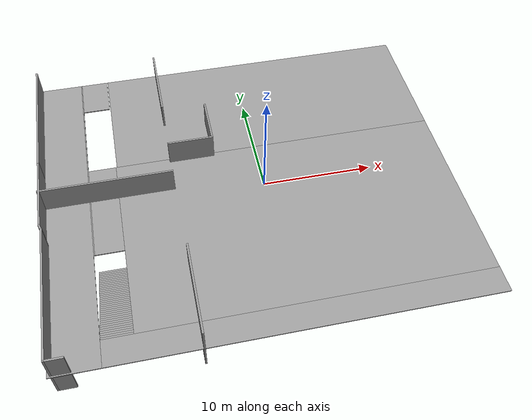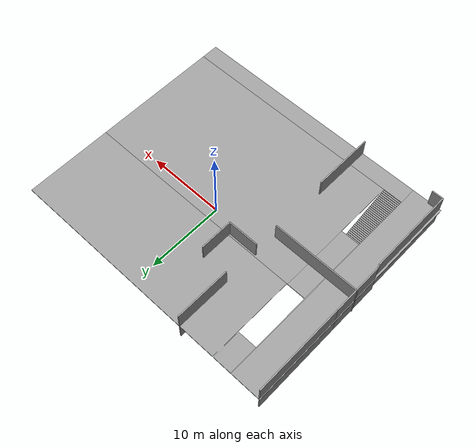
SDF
<sdf version="1.6">
 <model name="small_world">
  <pose>-1.73619 -1.30115 0 0 -0 0</pose>
  <link name="Floor_0">
   <pose>-0 0 2.5 0 -0 0</pose>
   <visual name="Floor_0_Visual_0">
    <pose>-15.7168 0 0.05 0 -0 0</pose>
    <geometry><box><size>3.89415 29.9405 0.1</size></box></geometry>
    <material>
     <script><uri>file://media/materials/scripts/gazebo.material</uri><name>Gazebo/Grey</name></script>
     <ambient>1 1 1 1</ambient>
    </material>
    <meta><layer>1</layer></meta>
   </visual>
   <collision name="Floor_0_Collision_0">
    <geometry><box><size>3.89415 29.9405 0.1</size></box></geometry>
    <pose>-15.7168 0 0.05 0 -0 0</pose>
   </collision>
   <visual name="Floor_0_Visual_1">
    <pose>1.94707 -13.8604 0.05 0 -0 0</pose>
    <geometry><box><size>31.4337 2.21975 0.1</size></box></geometry>
    <material>
     <script><uri>file://media/materials/scripts/gazebo.material</uri><name>Gazebo/Grey</name></script>
     <ambient>1 1 1 1</ambient>
    </material>
    <meta><layer>1</layer></meta>
   </visual>
   <collision name="Floor_0_Collision_1">
    <geometry><box><size>31.4337 2.21975 0.1</size></box></geometry>
    <pose>1.94707 -13.8604 0.05 0 -0 0</pose>
   </collision>
   <visual name="Floor_0_Visual_2">
    <pose>3.19707 -4.51303 0.05 0 -0 0</pose>
    <geometry><box><size>28.9337 16.475 0.1</size></box></geometry>
    <material>
     <script><uri>file://media/materials/scripts/gazebo.material</uri><name>Gazebo/Grey</name></script>
     <ambient>1 1 1 1</ambient>
    </material>
    <meta><layer>1</layer></meta>
   </visual>
   <collision name="Floor_0_Collision_2">
    <geometry><box><size>28.9337 16.475 0.1</size></box></geometry>
    <pose>3.19707 -4.51303 0.05 0 -0 0</pose>
   </collision>
   <visual name="Floor_0_Visual_3">
    <pose>-13.7264 4.85987 0.05 0 -0 0</pose>
    <geometry><box><size>0.086796 20.2208 0.1</size></box></geometry>
    <material>
     <script><uri>file://media/materials/scripts/gazebo.material</uri><name>Gazebo/Grey</name></script>
     <ambient>1 1 1 1</ambient>
    </material>
    <meta><layer>1</layer></meta>
   </visual>
   <collision name="Floor_0_Collision_3">
    <geometry><box><size>0.086796 20.2208 0.1</size></box></geometry>
    <pose>-13.7264 4.85987 0.05 0 -0 0</pose>
   </collision>
   <visual name="Floor_0_Visual_4">
    <pose>-12.4764 -0.763028 0.05 0 -0 0</pose>
    <geometry><box><size>2.4132 8.97498 0.1</size></box></geometry>
    <material>
     <script><uri>file://media/materials/scripts/gazebo.material</uri><name>Gazebo/Grey</name></script>
     <ambient>1 1 1 1</ambient>
    </material>
    <meta><layer>1</layer></meta>
   </visual>
   <collision name="Floor_0_Collision_4">
    <geometry><box><size>2.4132 8.97498 0.1</size></box></geometry>
    <pose>-12.4764 -0.763028 0.05 0 -0 0</pose>
   </collision>
   <visual name="Floor_0_Visual_5">
    <pose>3.24047 9.34736 0.05 0 -0 0</pose>
    <geometry><box><size>28.8469 11.2458 0.1</size></box></geometry>
    <material>
     <script><uri>file://media/materials/scripts/gazebo.material</uri><name>Gazebo/Grey</name></script>
     <ambient>1 1 1 1</ambient>
    </material>
    <meta><layer>1</layer></meta>
   </visual>
   <collision name="Floor_0_Collision_5">
    <geometry><box><size>28.8469 11.2458 0.1</size></box></geometry>
    <pose>3.24047 9.34736 0.05 0 -0 0</pose>
   </collision>
   <visual name="Floor_0_Visual_6">
    <pose>-12.4764 13.0974 0.05 0 -0 0</pose>
    <geometry><box><size>2.4132 3.7458 0.1</size></box></geometry>
    <material>
     <script><uri>file://media/materials/scripts/gazebo.material</uri><name>Gazebo/Grey</name></script>
     <ambient>1 1 1 1</ambient>
    </material>
    <meta><layer>1</layer></meta>
   </visual>
   <collision name="Floor_0_Collision_6">
    <geometry><box><size>2.4132 3.7458 0.1</size></box></geometry>
    <pose>-12.4764 13.0974 0.05 0 -0 0</pose>
   </collision>
  </link>
  <link name="Stairs_1">
   <visual name="Stairs_1_Visual_0">
    <pose>-12.5198 -5.35766 0.035714 0 -0 0</pose>
    <geometry><box><size>2.5 0.214286 0.071429</size></box></geometry>
    <material>
     <script><uri>file://media/materials/scripts/gazebo.material</uri><name>Gazebo/Grey</name></script>
     <ambient>1 1 1 1</ambient>
    </material>
    <meta><layer>0</layer></meta>
   </visual>
   <collision name="Stairs_1_Collision_0">
    <geometry><box><size>2.5 0.214286 0.071429</size></box></geometry>
    <pose>-12.5198 -5.35766 0.035714 0 -0 0</pose>
   </collision>
   <visual name="Stairs_1_Visual_1">
    <pose>-12.5198 -5.57195 0.107143 0 -0 0</pose>
    <geometry><box><size>2.5 0.214286 0.071429</size></box></geometry>
    <material>
     <script><uri>file://media/materials/scripts/gazebo.material</uri><name>Gazebo/Grey</name></script>
     <ambient>1 1 1 1</ambient>
    </material>
    <meta><layer>0</layer></meta>
   </visual>
   <collision name="Stairs_1_Collision_1">
    <geometry><box><size>2.5 0.214286 0.071429</size></box></geometry>
    <pose>-12.5198 -5.57195 0.107143 0 -0 0</pose>
   </collision>
   <visual name="Stairs_1_Visual_2">
    <pose>-12.5198 -5.78623 0.178571 0 -0 0</pose>
    <geometry><box><size>2.5 0.214286 0.071429</size></box></geometry>
    <material>
     <script><uri>file://media/materials/scripts/gazebo.material</uri><name>Gazebo/Grey</name></script>
     <ambient>1 1 1 1</ambient>
    </material>
    <meta><layer>0</layer></meta>
   </visual>
   <collision name="Stairs_1_Collision_2">
    <geometry><box><size>2.5 0.214286 0.071429</size></box></geometry>
    <pose>-12.5198 -5.78623 0.178571 0 -0 0</pose>
   </collision>
   <visual name="Stairs_1_Visual_3">
    <pose>-12.5198 -6.00052 0.25 0 -0 0</pose>
    <geometry><box><size>2.5 0.214286 0.071429</size></box></geometry>
    <material>
     <script><uri>file://media/materials/scripts/gazebo.material</uri><name>Gazebo/Grey</name></script>
     <ambient>1 1 1 1</ambient>
    </material>
    <meta><layer>0</layer></meta>
   </visual>
   <collision name="Stairs_1_Collision_3">
    <geometry><box><size>2.5 0.214286 0.071429</size></box></geometry>
    <pose>-12.5198 -6.00052 0.25 0 -0 0</pose>
   </collision>
   <visual name="Stairs_1_Visual_4">
    <pose>-12.5198 -6.21481 0.321429 0 -0 0</pose>
    <geometry><box><size>2.5 0.214286 0.071429</size></box></geometry>
    <material>
     <script><uri>file://media/materials/scripts/gazebo.material</uri><name>Gazebo/Grey</name></script>
     <ambient>1 1 1 1</ambient>
    </material>
    <meta><layer>0</layer></meta>
   </visual>
   <collision name="Stairs_1_Collision_4">
    <geometry><box><size>2.5 0.214286 0.071429</size></box></geometry>
    <pose>-12.5198 -6.21481 0.321429 0 -0 0</pose>
   </collision>
   <visual name="Stairs_1_Visual_5">
    <pose>-12.5198 -6.42909 0.392857 0 -0 0</pose>
    <geometry><box><size>2.5 0.214286 0.071429</size></box></geometry>
    <material>
     <script><uri>file://media/materials/scripts/gazebo.material</uri><name>Gazebo/Grey</name></script>
     <ambient>1 1 1 1</ambient>
    </material>
    <meta><layer>0</layer></meta>
   </visual>
   <collision name="Stairs_1_Collision_5">
    <geometry><box><size>2.5 0.214286 0.071429</size></box></geometry>
    <pose>-12.5198 -6.42909 0.392857 0 -0 0</pose>
   </collision>
   <visual name="Stairs_1_Visual_6">
    <pose>-12.5198 -6.64338 0.464286 0 -0 0</pose>
    <geometry><box><size>2.5 0.214286 0.071429</size></box></geometry>
    <material>
     <script><uri>file://media/materials/scripts/gazebo.material</uri><name>Gazebo/Grey</name></script>
     <ambient>1 1 1 1</ambient>
    </material>
    <meta><layer>0</layer></meta>
   </visual>
   <collision name="Stairs_1_Collision_6">
    <geometry><box><size>2.5 0.214286 0.071429</size></box></geometry>
    <pose>-12.5198 -6.64338 0.464286 0 -0 0</pose>
   </collision>
   <visual name="Stairs_1_Visual_7">
    <pose>-12.5198 -6.85766 0.535714 0 -0 0</pose>
    <geometry><box><size>2.5 0.214286 0.071429</size></box></geometry>
    <material>
     <script><uri>file://media/materials/scripts/gazebo.material</uri><name>Gazebo/Grey</name></script>
     <ambient>1 1 1 1</ambient>
    </material>
    <meta><layer>0</layer></meta>
   </visual>
   <collision name="Stairs_1_Collision_7">
    <geometry><box><size>2.5 0.214286 0.071429</size></box></geometry>
    <pose>-12.5198 -6.85766 0.535714 0 -0 0</pose>
   </collision>
   <visual name="Stairs_1_Visual_8">
    <pose>-12.5198 -7.07195 0.607143 0 -0 0</pose>
    <geometry><box><size>2.5 0.214286 0.071429</size></box></geometry>
    <material>
     <script><uri>file://media/materials/scripts/gazebo.material</uri><name>Gazebo/Grey</name></script>
     <ambient>1 1 1 1</ambient>
    </material>
    <meta><layer>0</layer></meta>
   </visual>
   <collision name="Stairs_1_Collision_8">
    <geometry><box><size>2.5 0.214286 0.071429</size></box></geometry>
    <pose>-12.5198 -7.07195 0.607143 0 -0 0</pose>
   </collision>
   <visual name="Stairs_1_Visual_9">
    <pose>-12.5198 -7.28623 0.678571 0 -0 0</pose>
    <geometry><box><size>2.5 0.214286 0.071429</size></box></geometry>
    <material>
     <script><uri>file://media/materials/scripts/gazebo.material</uri><name>Gazebo/Grey</name></script>
     <ambient>1 1 1 1</ambient>
    </material>
    <meta><layer>0</layer></meta>
   </visual>
   <collision name="Stairs_1_Collision_9">
    <geometry><box><size>2.5 0.214286 0.071429</size></box></geometry>
    <pose>-12.5198 -7.28623 0.678571 0 -0 0</pose>
   </collision>
   <visual name="Stairs_1_Visual_10">
    <pose>-12.5198 -7.50052 0.75 0 -0 0</pose>
    <geometry><box><size>2.5 0.214286 0.071429</size></box></geometry>
    <material>
     <script><uri>file://media/materials/scripts/gazebo.material</uri><name>Gazebo/Grey</name></script>
     <ambient>1 1 1 1</ambient>
    </material>
    <meta><layer>0</layer></meta>
   </visual>
   <collision name="Stairs_1_Collision_10">
    <geometry><box><size>2.5 0.214286 0.071429</size></box></geometry>
    <pose>-12.5198 -7.50052 0.75 0 -0 0</pose>
   </collision>
   <visual name="Stairs_1_Visual_11">
    <pose>-12.5198 -7.71481 0.821429 0 -0 0</pose>
    <geometry><box><size>2.5 0.214286 0.071429</size></box></geometry>
    <material>
     <script><uri>file://media/materials/scripts/gazebo.material</uri><name>Gazebo/Grey</name></script>
     <ambient>1 1 1 1</ambient>
    </material>
    <meta><layer>0</layer></meta>
   </visual>
   <collision name="Stairs_1_Collision_11">
    <geometry><box><size>2.5 0.214286 0.071429</size></box></geometry>
    <pose>-12.5198 -7.71481 0.821429 0 -0 0</pose>
   </collision>
   <visual name="Stairs_1_Visual_12">
    <pose>-12.5198 -7.92909 0.892857 0 -0 0</pose>
    <geometry><box><size>2.5 0.214286 0.071429</size></box></geometry>
    <material>
     <script><uri>file://media/materials/scripts/gazebo.material</uri><name>Gazebo/Grey</name></script>
     <ambient>1 1 1 1</ambient>
    </material>
    <meta><layer>0</layer></meta>
   </visual>
   <collision name="Stairs_1_Collision_12">
    <geometry><box><size>2.5 0.214286 0.071429</size></box></geometry>
    <pose>-12.5198 -7.92909 0.892857 0 -0 0</pose>
   </collision>
   <visual name="Stairs_1_Visual_13">
    <pose>-12.5198 -8.14338 0.964286 0 -0 0</pose>
    <geometry><box><size>2.5 0.214286 0.071429</size></box></geometry>
    <material>
     <script><uri>file://media/materials/scripts/gazebo.material</uri><name>Gazebo/Grey</name></script>
     <ambient>1 1 1 1</ambient>
    </material>
    <meta><layer>0</layer></meta>
   </visual>
   <collision name="Stairs_1_Collision_13">
    <geometry><box><size>2.5 0.214286 0.071429</size></box></geometry>
    <pose>-12.5198 -8.14338 0.964286 0 -0 0</pose>
   </collision>
   <visual name="Stairs_1_Visual_14">
    <pose>-12.5198 -8.35766 1.03571 0 -0 0</pose>
    <geometry><box><size>2.5 0.214286 0.071429</size></box></geometry>
    <material>
     <script><uri>file://media/materials/scripts/gazebo.material</uri><name>Gazebo/Grey</name></script>
     <ambient>1 1 1 1</ambient>
    </material>
    <meta><layer>0</layer></meta>
   </visual>
   <collision name="Stairs_1_Collision_14">
    <geometry><box><size>2.5 0.214286 0.071429</size></box></geometry>
    <pose>-12.5198 -8.35766 1.03571 0 -0 0</pose>
   </collision>
   <visual name="Stairs_1_Visual_15">
    <pose>-12.5198 -8.57195 1.10714 0 -0 0</pose>
    <geometry><box><size>2.5 0.214286 0.071429</size></box></geometry>
    <material>
     <script><uri>file://media/materials/scripts/gazebo.material</uri><name>Gazebo/Grey</name></script>
     <ambient>1 1 1 1</ambient>
    </material>
    <meta><layer>0</layer></meta>
   </visual>
   <collision name="Stairs_1_Collision_15">
    <geometry><box><size>2.5 0.214286 0.071429</size></box></geometry>
    <pose>-12.5198 -8.57195 1.10714 0 -0 0</pose>
   </collision>
   <visual name="Stairs_1_Visual_16">
    <pose>-12.5198 -8.78623 1.17857 0 -0 0</pose>
    <geometry><box><size>2.5 0.214286 0.071429</size></box></geometry>
    <material>
     <script><uri>file://media/materials/scripts/gazebo.material</uri><name>Gazebo/Grey</name></script>
     <ambient>1 1 1 1</ambient>
    </material>
    <meta><layer>0</layer></meta>
   </visual>
   <collision name="Stairs_1_Collision_16">
    <geometry><box><size>2.5 0.214286 0.071429</size></box></geometry>
    <pose>-12.5198 -8.78623 1.17857 0 -0 0</pose>
   </collision>
   <visual name="Stairs_1_Visual_17">
    <pose>-12.5198 -9.00052 1.25 0 -0 0</pose>
    <geometry><box><size>2.5 0.214286 0.071429</size></box></geometry>
    <material>
     <script><uri>file://media/materials/scripts/gazebo.material</uri><name>Gazebo/Grey</name></script>
     <ambient>1 1 1 1</ambient>
    </material>
    <meta><layer>0</layer></meta>
   </visual>
   <collision name="Stairs_1_Collision_17">
    <geometry><box><size>2.5 0.214286 0.071429</size></box></geometry>
    <pose>-12.5198 -9.00052 1.25 0 -0 0</pose>
   </collision>
   <visual name="Stairs_1_Visual_18">
    <pose>-12.5198 -9.21481 1.32143 0 -0 0</pose>
    <geometry><box><size>2.5 0.214286 0.071429</size></box></geometry>
    <material>
     <script><uri>file://media/materials/scripts/gazebo.material</uri><name>Gazebo/Grey</name></script>
     <ambient>1 1 1 1</ambient>
    </material>
    <meta><layer>0</layer></meta>
   </visual>
   <collision name="Stairs_1_Collision_18">
    <geometry><box><size>2.5 0.214286 0.071429</size></box></geometry>
    <pose>-12.5198 -9.21481 1.32143 0 -0 0</pose>
   </collision>
   <visual name="Stairs_1_Visual_19">
    <pose>-12.5198 -9.42909 1.39286 0 -0 0</pose>
    <geometry><box><size>2.5 0.214286 0.071429</size></box></geometry>
    <material>
     <script><uri>file://media/materials/scripts/gazebo.material</uri><name>Gazebo/Grey</name></script>
     <ambient>1 1 1 1</ambient>
    </material>
    <meta><layer>0</layer></meta>
   </visual>
   <collision name="Stairs_1_Collision_19">
    <geometry><box><size>2.5 0.214286 0.071429</size></box></geometry>
    <pose>-12.5198 -9.42909 1.39286 0 -0 0</pose>
   </collision>
   <visual name="Stairs_1_Visual_20">
    <pose>-12.5198 -9.64338 1.46429 0 -0 0</pose>
    <geometry><box><size>2.5 0.214286 0.071429</size></box></geometry>
    <material>
     <script><uri>file://media/materials/scripts/gazebo.material</uri><name>Gazebo/Grey</name></script>
     <ambient>1 1 1 1</ambient>
    </material>
    <meta><layer>0</layer></meta>
   </visual>
   <collision name="Stairs_1_Collision_20">
    <geometry><box><size>2.5 0.214286 0.071429</size></box></geometry>
    <pose>-12.5198 -9.64338 1.46429 0 -0 0</pose>
   </collision>
   <visual name="Stairs_1_Visual_21">
    <pose>-12.5198 -9.85766 1.53571 0 -0 0</pose>
    <geometry><box><size>2.5 0.214286 0.071429</size></box></geometry>
    <material>
     <script><uri>file://media/materials/scripts/gazebo.material</uri><name>Gazebo/Grey</name></script>
     <ambient>1 1 1 1</ambient>
    </material>
    <meta><layer>0</layer></meta>
   </visual>
   <collision name="Stairs_1_Collision_21">
    <geometry><box><size>2.5 0.214286 0.071429</size></box></geometry>
    <pose>-12.5198 -9.85766 1.53571 0 -0 0</pose>
   </collision>
   <visual name="Stairs_1_Visual_22">
    <pose>-12.5198 -10.0719 1.60714 0 -0 0</pose>
    <geometry><box><size>2.5 0.214286 0.071429</size></box></geometry>
    <material>
     <script><uri>file://media/materials/scripts/gazebo.material</uri><name>Gazebo/Grey</name></script>
     <ambient>1 1 1 1</ambient>
    </material>
    <meta><layer>0</layer></meta>
   </visual>
   <collision name="Stairs_1_Collision_22">
    <geometry><box><size>2.5 0.214286 0.071429</size></box></geometry>
    <pose>-12.5198 -10.0719 1.60714 0 -0 0</pose>
   </collision>
   <visual name="Stairs_1_Visual_23">
    <pose>-12.5198 -10.2862 1.67857 0 -0 0</pose>
    <geometry><box><size>2.5 0.214286 0.071429</size></box></geometry>
    <material>
     <script><uri>file://media/materials/scripts/gazebo.material</uri><name>Gazebo/Grey</name></script>
     <ambient>1 1 1 1</ambient>
    </material>
    <meta><layer>0</layer></meta>
   </visual>
   <collision name="Stairs_1_Collision_23">
    <geometry><box><size>2.5 0.214286 0.071429</size></box></geometry>
    <pose>-12.5198 -10.2862 1.67857 0 -0 0</pose>
   </collision>
   <visual name="Stairs_1_Visual_24">
    <pose>-12.5198 -10.5005 1.75 0 -0 0</pose>
    <geometry><box><size>2.5 0.214286 0.071429</size></box></geometry>
    <material>
     <script><uri>file://media/materials/scripts/gazebo.material</uri><name>Gazebo/Grey</name></script>
     <ambient>1 1 1 1</ambient>
    </material>
    <meta><layer>0</layer></meta>
   </visual>
   <collision name="Stairs_1_Collision_24">
    <geometry><box><size>2.5 0.214286 0.071429</size></box></geometry>
    <pose>-12.5198 -10.5005 1.75 0 -0 0</pose>
   </collision>
   <visual name="Stairs_1_Visual_25">
    <pose>-12.5198 -10.7148 1.82143 0 -0 0</pose>
    <geometry><box><size>2.5 0.214286 0.071429</size></box></geometry>
    <material>
     <script><uri>file://media/materials/scripts/gazebo.material</uri><name>Gazebo/Grey</name></script>
     <ambient>1 1 1 1</ambient>
    </material>
    <meta><layer>0</layer></meta>
   </visual>
   <collision name="Stairs_1_Collision_25">
    <geometry><box><size>2.5 0.214286 0.071429</size></box></geometry>
    <pose>-12.5198 -10.7148 1.82143 0 -0 0</pose>
   </collision>
   <visual name="Stairs_1_Visual_26">
    <pose>-12.5198 -10.9291 1.89286 0 -0 0</pose>
    <geometry><box><size>2.5 0.214286 0.071429</size></box></geometry>
    <material>
     <script><uri>file://media/materials/scripts/gazebo.material</uri><name>Gazebo/Grey</name></script>
     <ambient>1 1 1 1</ambient>
    </material>
    <meta><layer>0</layer></meta>
   </visual>
   <collision name="Stairs_1_Collision_26">
    <geometry><box><size>2.5 0.214286 0.071429</size></box></geometry>
    <pose>-12.5198 -10.9291 1.89286 0 -0 0</pose>
   </collision>
   <visual name="Stairs_1_Visual_27">
    <pose>-12.5198 -11.1434 1.96429 0 -0 0</pose>
    <geometry><box><size>2.5 0.214286 0.071429</size></box></geometry>
    <material>
     <script><uri>file://media/materials/scripts/gazebo.material</uri><name>Gazebo/Grey</name></script>
     <ambient>1 1 1 1</ambient>
    </material>
    <meta><layer>0</layer></meta>
   </visual>
   <collision name="Stairs_1_Collision_27">
    <geometry><box><size>2.5 0.214286 0.071429</size></box></geometry>
    <pose>-12.5198 -11.1434 1.96429 0 -0 0</pose>
   </collision>
   <visual name="Stairs_1_Visual_28">
    <pose>-12.5198 -11.3577 2.03571 0 -0 0</pose>
    <geometry><box><size>2.5 0.214286 0.071429</size></box></geometry>
    <material>
     <script><uri>file://media/materials/scripts/gazebo.material</uri><name>Gazebo/Grey</name></script>
     <ambient>1 1 1 1</ambient>
    </material>
    <meta><layer>0</layer></meta>
   </visual>
   <collision name="Stairs_1_Collision_28">
    <geometry><box><size>2.5 0.214286 0.071429</size></box></geometry>
    <pose>-12.5198 -11.3577 2.03571 0 -0 0</pose>
   </collision>
   <visual name="Stairs_1_Visual_29">
    <pose>-12.5198 -11.5719 2.10714 0 -0 0</pose>
    <geometry><box><size>2.5 0.214286 0.071429</size></box></geometry>
    <material>
     <script><uri>file://media/materials/scripts/gazebo.material</uri><name>Gazebo/Grey</name></script>
     <ambient>1 1 1 1</ambient>
    </material>
    <meta><layer>0</layer></meta>
   </visual>
   <collision name="Stairs_1_Collision_29">
    <geometry><box><size>2.5 0.214286 0.071429</size></box></geometry>
    <pose>-12.5198 -11.5719 2.10714 0 -0 0</pose>
   </collision>
   <visual name="Stairs_1_Visual_30">
    <pose>-12.5198 -11.7862 2.17857 0 -0 0</pose>
    <geometry><box><size>2.5 0.214286 0.071429</size></box></geometry>
    <material>
     <script><uri>file://media/materials/scripts/gazebo.material</uri><name>Gazebo/Grey</name></script>
     <ambient>1 1 1 1</ambient>
    </material>
    <meta><layer>0</layer></meta>
   </visual>
   <collision name="Stairs_1_Collision_30">
    <geometry><box><size>2.5 0.214286 0.071429</size></box></geometry>
    <pose>-12.5198 -11.7862 2.17857 0 -0 0</pose>
   </collision>
   <visual name="Stairs_1_Visual_31">
    <pose>-12.5198 -12.0005 2.25 0 -0 0</pose>
    <geometry><box><size>2.5 0.214286 0.071429</size></box></geometry>
    <material>
     <script><uri>file://media/materials/scripts/gazebo.material</uri><name>Gazebo/Grey</name></script>
     <ambient>1 1 1 1</ambient>
    </material>
    <meta><layer>0</layer></meta>
   </visual>
   <collision name="Stairs_1_Collision_31">
    <geometry><box><size>2.5 0.214286 0.071429</size></box></geometry>
    <pose>-12.5198 -12.0005 2.25 0 -0 0</pose>
   </collision>
   <visual name="Stairs_1_Visual_32">
    <pose>-12.5198 -12.2148 2.32143 0 -0 0</pose>
    <geometry><box><size>2.5 0.214286 0.071429</size></box></geometry>
    <material>
     <script><uri>file://media/materials/scripts/gazebo.material</uri><name>Gazebo/Grey</name></script>
     <ambient>1 1 1 1</ambient>
    </material>
    <meta><layer>0</layer></meta>
   </visual>
   <collision name="Stairs_1_Collision_32">
    <geometry><box><size>2.5 0.214286 0.071429</size></box></geometry>
    <pose>-12.5198 -12.2148 2.32143 0 -0 0</pose>
   </collision>
   <visual name="Stairs_1_Visual_33">
    <pose>-12.5198 -12.4291 2.39286 0 -0 0</pose>
    <geometry><box><size>2.5 0.214286 0.071429</size></box></geometry>
    <material>
     <script><uri>file://media/materials/scripts/gazebo.material</uri><name>Gazebo/Grey</name></script>
     <ambient>1 1 1 1</ambient>
    </material>
    <meta><layer>0</layer></meta>
   </visual>
   <collision name="Stairs_1_Collision_33">
    <geometry><box><size>2.5 0.214286 0.071429</size></box></geometry>
    <pose>-12.5198 -12.4291 2.39286 0 -0 0</pose>
   </collision>
   <visual name="Stairs_1_Visual_34">
    <pose>-12.5198 -12.6434 2.46429 0 -0 0</pose>
    <geometry><box><size>2.5 0.214286 0.071429</size></box></geometry>
    <material>
     <script><uri>file://media/materials/scripts/gazebo.material</uri><name>Gazebo/Grey</name></script>
     <ambient>1 1 1 1</ambient>
    </material>
    <meta><layer>0</layer></meta>
   </visual>
   <collision name="Stairs_1_Collision_34">
    <geometry><box><size>2.5 0.214286 0.071429</size></box></geometry>
    <pose>-12.5198 -12.6434 2.46429 0 -0 0</pose>
   </collision>
  </link>
  <link name="Wall_17">
   <collision name="Wall_17_Collision">
    <geometry><box><size>1.5 0.15 2.5</size></box></geometry>
    <pose>0 0 1.25 0 -0 0</pose>
   </collision>
   <visual name="Wall_17_Visual">
    <pose>0 0 1.25 0 -0 0</pose>
    <geometry><box><size>1.5 0.15 2.5</size></box></geometry>
    <material>
     <script><uri>file://media/materials/scripts/gazebo.material</uri><name>Gazebo/Grey</name></script>
     <ambient>1 1 1 1</ambient>
    </material>
    <meta><layer>0</layer></meta>
   </visual>
   <pose>-16.6861 -14.7928 0 0 -0 3.14159</pose>
  </link>
  <link name="Wall_26">
   <collision name="Wall_26_Collision">
    <geometry><box><size>7 0.15 2.5</size></box></geometry>
    <pose>0 0 1.25 0 -0 0</pose>
   </collision>
   <visual name="Wall_26_Visual">
    <pose>0 0 1.25 0 -0 0</pose>
    <geometry><box><size>7 0.15 2.5</size></box></geometry>
    <material>
     <script><uri>file://media/materials/scripts/gazebo.material</uri><name>Gazebo/Grey</name></script>
     <ambient>1 1 1 1</ambient>
    </material>
    <meta><layer>0</layer></meta>
   </visual>
   <pose>-6.38923 11.4703 0 0 -0 -1.5708</pose>
  </link>
  <link name="Wall_28">
   <collision name="Wall_28_Collision">
    <geometry><box><size>11.3413 0.15 2.5</size></box></geometry>
    <pose>0 0 1.25 0 -0 0</pose>
   </collision>
   <visual name="Wall_28_Visual">
    <pose>0 0 1.25 0 -0 0</pose>
    <geometry><box><size>11.3413 0.15 2.5</size></box></geometry>
    <material>
     <script><uri>file://media/materials/scripts/gazebo.material</uri><name>Gazebo/Grey</name></script>
     <ambient>1 1 1 1</ambient>
    </material>
    <meta><layer>0</layer></meta>
   </visual>
   <pose>-17.3611 -9.19715 0 0 -0 1.5708</pose>
  </link>
  <link name="Wall_32">
   <collision name="Wall_32_Collision">
    <geometry><box><size>4.25 0.15 2.5</size></box></geometry>
    <pose>0 0 1.25 0 -0 0</pose>
   </collision>
   <visual name="Wall_32_Visual">
    <pose>0 0 1.25 0 -0 0</pose>
    <geometry><box><size>4.25 0.15 2.5</size></box></geometry>
    <material>
     <script><uri>file://media/materials/scripts/gazebo.material</uri><name>Gazebo/Grey</name></script>
     <ambient>1 1 1 1</ambient>
    </material>
    <meta><layer>0</layer></meta>
   </visual>
   <pose>-4.6111 3.45723 0 0 -0 0</pose>
  </link>
  <link name="Wall_33">
   <collision name="Wall_33_Collision">
    <geometry><box><size>4.25 0.15 2.5</size></box></geometry>
    <pose>0 0 1.25 0 -0 0</pose>
   </collision>
   <visual name="Wall_33_Visual">
    <pose>0 0 1.25 0 -0 0</pose>
    <geometry><box><size>4.25 0.15 2.5</size></box></geometry>
    <material>
     <script><uri>file://media/materials/scripts/gazebo.material</uri><name>Gazebo/Grey</name></script>
     <ambient>1 1 1 1</ambient>
    </material>
    <meta><layer>0</layer></meta>
   </visual>
   <pose>-2.5611 5.50723 0 0 -0 1.5708</pose>
  </link>
  <link name="Wall_4">
   <collision name="Wall_4_Collision">
    <geometry><box><size>11.5 0.15 2.5</size></box></geometry>
    <pose>0 0 1.25 0 -0 0</pose>
   </collision>
   <visual name="Wall_4_Visual">
    <pose>0 0 1.25 0 -0 0</pose>
    <geometry><box><size>11.5 0.15 2.5</size></box></geometry>
    <material>
     <script><uri>file://media/materials/scripts/gazebo.material</uri><name>Gazebo/Grey</name></script>
     <ambient>1 1 1 1</ambient>
    </material>
    <meta><layer>0</layer></meta>
   </visual>
   <pose>-17.5111 9.13223 0 0 -0 -1.5708</pose>
  </link>
  <link name="Wall_56">
   <collision name="Wall_56_Collision">
    <geometry><box><size>7.75 0.15 2.5</size></box></geometry>
    <pose>0 0 1.25 0 -0 0</pose>
   </collision>
   <visual name="Wall_56_Visual">
    <pose>0 0 1.25 0 -0 0</pose>
    <geometry><box><size>7.75 0.15 2.5</size></box></geometry>
    <material>
     <script><uri>file://media/materials/scripts/gazebo.material</uri><name>Gazebo/Grey</name></script>
     <ambient>1 1 1 1</ambient>
    </material>
    <meta><layer>0</layer></meta>
   </visual>
   <pose>-6.33956 -11.0953 0 0 -0 1.5708</pose>
  </link>
  <link name="Wall_58">
   <collision name="Wall_58_Collision">
    <geometry><box><size>6.75 0.15 2.5</size></box></geometry>
    <pose>0 0 1.25 0 -0 0</pose>
   </collision>
   <visual name="Wall_58_Visual">
    <pose>0 0 1.25 0 -0 0</pose>
    <geometry><box><size>6.75 0.15 2.5</size></box></geometry>
    <material>
     <script><uri>file://media/materials/scripts/gazebo.material</uri><name>Gazebo/Grey</name></script>
     <ambient>1 1 1 1</ambient>
    </material>
    <meta><layer>0</layer></meta>
   </visual>
   <pose>-17.5111 0.157225 0 0 -0 -1.5708</pose>
  </link>
  <link name="Wall_60">
   <collision name="Wall_60_Collision">
    <geometry><box><size>0.632648 0.15 2.5</size></box></geometry>
    <pose>0 0 1.25 0 -0 0</pose>
   </collision>
   <visual name="Wall_60_Visual">
    <pose>0 0 1.25 0 -0 0</pose>
    <geometry><box><size>0.632648 0.15 2.5</size></box></geometry>
    <material>
     <script><uri>file://media/materials/scripts/gazebo.material</uri><name>Gazebo/Grey</name></script>
     <ambient>1 1 1 1</ambient>
    </material>
    <meta><layer>0</layer></meta>
   </visual>
   <pose>-17.4361 -3.37215 0 0 -0 1.88682</pose>
  </link>
  <link name="Wall_64">
   <collision name="Wall_64_Collision">
    <geometry><box><size>11.25 0.15 2.5</size></box></geometry>
    <pose>0 0 1.25 0 -0 0</pose>
   </collision>
   <visual name="Wall_64_Visual">
    <pose>0 0 1.25 0 -0 0</pose>
    <geometry><box><size>11.25 0.15 2.5</size></box></geometry>
    <material>
     <script><uri>file://media/materials/scripts/gazebo.material</uri><name>Gazebo/Grey</name></script>
     <ambient>1 1 1 1</ambient>
    </material>
    <meta><layer>0</layer></meta>
   </visual>
   <pose>-12.0389 0.309792 0 0 -0 0</pose>
  </link>
  <link name="Wall_69">
   <collision name="Wall_69_Collision">
    <geometry><box><size>11.5 0.15 2.5</size></box></geometry>
    <pose>0 0 1.25 0 -0 0</pose>
   </collision>
   <visual name="Wall_69_Visual">
    <pose>0 0 1.25 0 -0 0</pose>
    <geometry><box><size>11.5 0.15 2.5</size></box></geometry>
    <material>
     <script><uri>file://media/materials/scripts/gazebo.material</uri><name>Gazebo/Grey</name></script>
     <ambient>1 1 1 1</ambient>
    </material>
    <meta><layer>1</layer></meta>
   </visual>
   <pose>-17.5111 9.13223 2.5 0 -0 -1.5708</pose>
  </link>
  <link name="Wall_70">
   <collision name="Wall_70_Collision">
    <geometry><box><size>1.5 0.15 2.5</size></box></geometry>
    <pose>0 0 1.25 0 -0 0</pose>
   </collision>
   <visual name="Wall_70_Visual">
    <pose>0 0 1.25 0 -0 0</pose>
    <geometry><box><size>1.5 0.15 2.5</size></box></geometry>
    <material>
     <script><uri>file://media/materials/scripts/gazebo.material</uri><name>Gazebo/Grey</name></script>
     <ambient>1 1 1 1</ambient>
    </material>
    <meta><layer>1</layer></meta>
   </visual>
   <pose>-16.6861 -14.7928 2.5 0 -0 3.14159</pose>
  </link>
  <link name="Wall_71">
   <collision name="Wall_71_Collision">
    <geometry><box><size>7 0.15 2.5</size></box></geometry>
    <pose>0 0 1.25 0 -0 0</pose>
   </collision>
   <visual name="Wall_71_Visual">
    <pose>0 0 1.25 0 -0 0</pose>
    <geometry><box><size>7 0.15 2.5</size></box></geometry>
    <material>
     <script><uri>file://media/materials/scripts/gazebo.material</uri><name>Gazebo/Grey</name></script>
     <ambient>1 1 1 1</ambient>
    </material>
    <meta><layer>1</layer></meta>
   </visual>
   <pose>-6.38923 11.4703 2.5 0 -0 -1.5708</pose>
  </link>
  <link name="Wall_72">
   <collision name="Wall_72_Collision">
    <geometry><box><size>11.3413 0.15 2.5</size></box></geometry>
    <pose>0 0 1.25 0 -0 0</pose>
   </collision>
   <visual name="Wall_72_Visual">
    <pose>0 0 1.25 0 -0 0</pose>
    <geometry><box><size>11.3413 0.15 2.5</size></box></geometry>
    <material>
     <script><uri>file://media/materials/scripts/gazebo.material</uri><name>Gazebo/Grey</name></script>
     <ambient>1 1 1 1</ambient>
    </material>
    <meta><layer>1</layer></meta>
   </visual>
   <pose>-17.3611 -9.19715 2.5 0 -0 1.5708</pose>
  </link>
  <link name="Wall_74">
   <collision name="Wall_74_Collision">
    <geometry><box><size>4.25 0.15 2.5</size></box></geometry>
    <pose>0 0 1.25 0 -0 0</pose>
   </collision>
   <visual name="Wall_74_Visual">
    <pose>0 0 1.25 0 -0 0</pose>
    <geometry><box><size>4.25 0.15 2.5</size></box></geometry>
    <material>
     <script><uri>file://media/materials/scripts/gazebo.material</uri><name>Gazebo/Grey</name></script>
     <ambient>1 1 1 1</ambient>
    </material>
    <meta><layer>1</layer></meta>
   </visual>
   <pose>-2.5611 5.50723 2.5 0 -0 1.5708</pose>
  </link>
  <link name="Wall_84">
   <collision name="Wall_84_Collision">
    <geometry><box><size>7.75 0.15 2.5</size></box></geometry>
    <pose>0 0 1.25 0 -0 0</pose>
   </collision>
   <visual name="Wall_84_Visual">
    <pose>0 0 1.25 0 -0 0</pose>
    <geometry><box><size>7.75 0.15 2.5</size></box></geometry>
    <material>
     <script><uri>file://media/materials/scripts/gazebo.material</uri><name>Gazebo/Grey</name></script>
     <ambient>1 1 1 1</ambient>
    </material>
    <meta><layer>1</layer></meta>
   </visual>
   <pose>-6.33956 -11.0953 2.5 0 -0 1.5708</pose>
  </link>
  <link name="Wall_85">
   <collision name="Wall_85_Collision">
    <geometry><box><size>6.75 0.15 2.5</size></box></geometry>
    <pose>0 0 1.25 0 -0 0</pose>
   </collision>
   <visual name="Wall_85_Visual">
    <pose>0 0 1.25 0 -0 0</pose>
    <geometry><box><size>6.75 0.15 2.5</size></box></geometry>
    <material>
     <script><uri>file://media/materials/scripts/gazebo.material</uri><name>Gazebo/Grey</name></script>
     <ambient>1 1 1 1</ambient>
    </material>
    <meta><layer>1</layer></meta>
   </visual>
   <pose>-17.5111 0.157225 2.5 0 -0 -1.5708</pose>
  </link>
  <link name="Wall_86">
   <collision name="Wall_86_Collision">
    <geometry><box><size>0.632648 0.15 2.5</size></box></geometry>
    <pose>0 0 1.25 0 -0 0</pose>
   </collision>
   <visual name="Wall_86_Visual">
    <pose>0 0 1.25 0 -0 0</pose>
    <geometry><box><size>0.632648 0.15 2.5</size></box></geometry>
    <material>
     <script><uri>file://media/materials/scripts/gazebo.material</uri><name>Gazebo/Grey</name></script>
     <ambient>1 1 1 1</ambient>
    </material>
    <meta><layer>1</layer></meta>
   </visual>
   <pose>-17.4361 -3.37215 2.5 0 -0 1.88682</pose>
  </link>
  <link name="Wall_88">
   <collision name="Wall_88_Collision">
    <geometry><box><size>11.25 0.15 2.5</size></box></geometry>
    <pose>0 0 1.25 0 -0 0</pose>
   </collision>
   <visual name="Wall_88_Visual">
    <pose>0 0 1.25 0 -0 0</pose>
    <geometry><box><size>11.25 0.15 2.5</size></box></geometry>
    <material>
     <script><uri>file://media/materials/scripts/gazebo.material</uri><name>Gazebo/Grey</name></script>
     <ambient>1 1 1 1</ambient>
    </material>
    <meta><layer>1</layer></meta>
   </visual>
   <pose>-12.0389 0.309792 2.5 0 -0 0</pose>
  </link>
  <link name="Wall_95">
   <collision name="Wall_95_Collision">
    <geometry><box><size>4 0.15 2.5</size></box></geometry>
    <pose>0 0 1.25 0 -0 0</pose>
   </collision>
   <visual name="Wall_95_Visual">
    <pose>0 0 1.25 0 -0 0</pose>
    <geometry><box><size>4 0.15 2.5</size></box></geometry>
    <material>
     <script><uri>file://media/materials/scripts/gazebo.material</uri><name>Gazebo/Grey</name></script>
     <ambient>1 1 1 1</ambient>
    </material>
    <meta><layer>1</layer></meta>
   </visual>
   <pose>-4.4861 3.45723 2.5 0 -0 3.14159</pose>
  </link>
  <static>1</static>
 </model>
</sdf>
